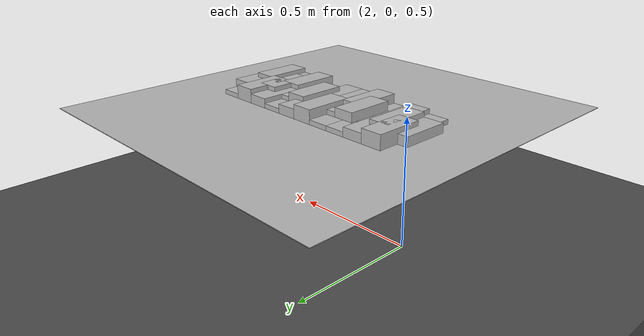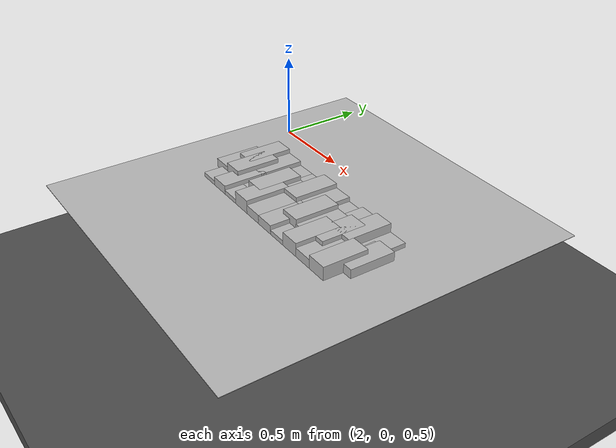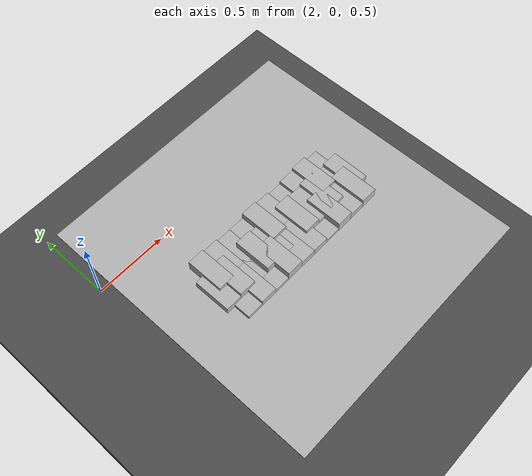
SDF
<sdf version="1.6">
 <world name="default">
  <model name="ground_plane">
   <static>1</static>
   <link name="link">
    <collision name="collision">
     <geometry><plane><normal>0 0 1</normal><size>100 100</size></plane></geometry>
     <surface><friction><ode><mu>100</mu><mu2>50</mu2></ode></friction></surface>
    </collision>
    <visual name="visual">
     <cast_shadows>0</cast_shadows>
     <geometry><plane><normal>0 0 1</normal><size>100 100</size></plane></geometry>
     <material>
      <script><uri>file://media/materials/scripts/gazebo.material</uri><name>Gazebo/Grey</name></script>
     </material>
    </visual>
   </link>
  </model>
  <model name="frc2016_roughterrain_0">
   <link name="link_clone_13">
    <pose>3.10114 -0.621156 -0.073164 0 -0 0</pose>
    <inertial>
     <inertia><ixx>nan</ixx><ixy>0</ixy><ixz>0</ixz><iyy>nan</iyy><iyz>0</iyz><izz>nan</izz></inertia>
     <mass>0</mass>
    </inertial>
    <visual name="row3_block9_md">
     <pose>-0.40005 -0.1143 0.10968 0 -0 0</pose>
     <geometry><box><size>0.115452 0.257474 0.0508</size></box></geometry>
     <material><shader type="pixel"/></material>
    </visual>
    <visual name="row1_block4_sm">
     <pose>0.17145 0.1143 0.09698 0 -0 0</pose>
     <geometry><box><size>0.115452 0.257474 0.0254</size></box></geometry>
     <material><shader type="pixel"/></material>
    </visual>
    <visual name="platform">
     <pose>0 0 0.08269 0 -0 0</pose>
     <geometry><box><size>1.91826 2.01688 0.003175</size></box></geometry>
     <material><shader type="pixel"/></material>
    </visual>
    <visual name="row1_block1_sm">
     <pose>0.51435 0.1143 0.09698 0 -0 0</pose>
     <geometry><box><size>0.115452 0.257474 0.0254</size></box></geometry>
     <material><shader type="pixel"/></material>
    </visual>
    <visual name="row1_block3_md">
     <pose>0.28575 0.1143 0.10968 0 -0 0</pose>
     <geometry><box><size>0.115452 0.257474 0.0508</size></box></geometry>
     <material><shader type="pixel"/></material>
    </visual>
    <visual name="row1_block2_lg">
     <pose>0.40005 0.1143 0.12238 0 -0 0</pose>
     <geometry><box><size>0.115452 0.257474 0.0762</size></box></geometry>
     <material><shader type="pixel"/></material>
    </visual>
    <visual name="row1_block5_md">
     <pose>0.05715 0.1143 0.10968 0 -0 0</pose>
     <geometry><box><size>0.115452 0.257474 0.0508</size></box></geometry>
     <material><shader type="pixel"/></material>
    </visual>
    <visual name="row1_block6_lg">
     <pose>-0.05715 0.1143 0.12238 0 -0 0</pose>
     <geometry><box><size>0.115452 0.257474 0.0762</size></box></geometry>
     <material><shader type="pixel"/></material>
    </visual>
    <visual name="row1_block8_sm">
     <pose>-0.28575 0.1143 0.09698 0 -0 0</pose>
     <geometry><box><size>0.115452 0.257474 0.0254</size></box></geometry>
     <material><shader type="pixel"/></material>
    </visual>
    <visual name="row1_block7_sm">
     <pose>-0.17145 0.1143 0.09698 0 -0 0</pose>
     <geometry><box><size>0.115452 0.257474 0.0254</size></box></geometry>
     <material><shader type="pixel"/></material>
    </visual>
    <visual name="row1_block9_md">
     <pose>-0.40005 0.1143 0.10968 0 -0 0</pose>
     <geometry><box><size>0.115452 0.257474 0.0508</size></box></geometry>
     <material><shader type="pixel"/></material>
    </visual>
    <visual name="row1_block10_lg">
     <pose>-0.51435 0.1143 0.12238 0 -0 0</pose>
     <geometry><box><size>0.115452 0.257474 0.0762</size></box></geometry>
     <material><shader type="pixel"/></material>
    </visual>
    <visual name="row2_block1_md">
     <pose>0.5715 0 0.10968 0 -0 0</pose>
     <geometry><box><size>0.115452 0.257474 0.0508</size></box></geometry>
     <material><shader type="pixel"/></material>
    </visual>
    <visual name="row2_block2_sm">
     <pose>0.4572 0 0.09698 0 -0 0</pose>
     <geometry><box><size>0.115452 0.257474 0.0254</size></box></geometry>
     <material><shader type="pixel"/></material>
    </visual>
    <visual name="row2_block3_lg">
     <pose>0.3429 0 0.12238 0 -0 0</pose>
     <geometry><box><size>0.115452 0.257474 0.0762</size></box></geometry>
     <material><shader type="pixel"/></material>
    </visual>
    <visual name="row2_block4_md">
     <pose>0.2286 0 0.10968 0 -0 0</pose>
     <geometry><box><size>0.115452 0.257474 0.0508</size></box></geometry>
     <material><shader type="pixel"/></material>
    </visual>
    <visual name="row2_block5_lg">
     <pose>0.1143 0 0.12238 0 -0 0</pose>
     <geometry><box><size>0.115452 0.257474 0.0762</size></box></geometry>
     <material><shader type="pixel"/></material>
    </visual>
    <visual name="row2_block6_sm">
     <pose>0 0 0.09698 0 -0 0</pose>
     <geometry><box><size>0.115452 0.257474 0.0254</size></box></geometry>
     <material><shader type="pixel"/></material>
    </visual>
    <visual name="row2_block7_md">
     <pose>-0.1143 0 0.10968 0 -0 0</pose>
     <geometry><box><size>0.115452 0.257474 0.0508</size></box></geometry>
     <material><shader type="pixel"/></material>
    </visual>
    <visual name="row2_block8_lg">
     <pose>-0.2286 0 0.12238 0 -0 0</pose>
     <geometry><box><size>0.115452 0.257474 0.0762</size></box></geometry>
     <material><shader type="pixel"/></material>
    </visual>
    <visual name="row2_block9_sm">
     <pose>-0.3429 0 0.09698 0 -0 0</pose>
     <geometry><box><size>0.115452 0.257474 0.0254</size></box></geometry>
     <material><shader type="pixel"/></material>
    </visual>
    <visual name="row2_block10_lg">
     <pose>-0.4572 0 0.12238 0 -0 0</pose>
     <geometry><box><size>0.115452 0.257474 0.0762</size></box></geometry>
     <material><shader type="pixel"/></material>
    </visual>
    <visual name="row2_block11_md">
     <pose>-0.5715 0 0.10968 0 -0 0</pose>
     <geometry><box><size>0.115452 0.257474 0.0508</size></box></geometry>
     <material><shader type="pixel"/></material>
    </visual>
    <visual name="row3_block2_md">
     <pose>0.40005 -0.1143 0.10968 0 -0 0</pose>
     <geometry><box><size>0.115452 0.257474 0.0508</size></box></geometry>
     <material><shader type="pixel"/></material>
    </visual>
    <visual name="row3_block1_lg">
     <pose>0.51435 -0.1143 0.12238 0 -0 0</pose>
     <geometry><box><size>0.115452 0.257474 0.0762</size></box></geometry>
     <material><shader type="pixel"/></material>
    </visual>
    <visual name="row3_block3_lg">
     <pose>0.28575 -0.1143 0.12238 0 -0 0</pose>
     <geometry><box><size>0.115452 0.257474 0.0762</size></box></geometry>
     <material><shader type="pixel"/></material>
    </visual>
    <visual name="row3_block4_sm">
     <pose>0.17145 -0.1143 0.09698 0 -0 0</pose>
     <geometry><box><size>0.115452 0.257474 0.0254</size></box></geometry>
     <material><shader type="pixel"/></material>
    </visual>
    <visual name="row3_block5_md">
     <pose>0.05715 -0.1143 0.10968 0 -0 0</pose>
     <geometry><box><size>0.115452 0.257474 0.0508</size></box></geometry>
     <material><shader type="pixel"/></material>
    </visual>
    <visual name="row3_block6_md">
     <pose>-0.05715 -0.1143 0.10968 0 -0 0</pose>
     <geometry><box><size>0.115452 0.257474 0.0508</size></box></geometry>
     <material><shader type="pixel"/></material>
    </visual>
    <visual name="row3_block8_sm">
     <pose>-0.28575 -0.1143 0.09698 0 -0 0</pose>
     <geometry><box><size>0.115452 0.257474 0.0254</size></box></geometry>
     <material><shader type="pixel"/></material>
    </visual>
    <visual name="row3_block7_lg">
     <pose>-0.17145 -0.1143 0.12238 0 -0 0</pose>
     <geometry><box><size>0.115452 0.257474 0.0762</size></box></geometry>
     <material><shader type="pixel"/></material>
    </visual>
    <visual name="row3_block10_sm">
     <pose>-0.51435 -0.1143 0.09698 0 -0 0</pose>
     <geometry><box><size>0.115452 0.257474 0.0254</size></box></geometry>
     <material><shader type="pixel"/></material>
    </visual>
    <collision name="row2_block5_lg_0">
     <pose>0.1143 0 0.12238 0 -0 0</pose>
     <geometry><box><size>0.115452 0.257474 0.0762</size></box></geometry>
     <surface>
      <friction>
       <ode><mu>1</mu><mu2>1</mu2><fdir1>0 0 0</fdir1><slip1>0</slip1><slip2>0</slip2></ode>
       <torsional>
        <coefficient>1</coefficient>
        <patch_radius>0</patch_radius>
        <surface_radius>0</surface_radius>
        <use_patch_radius>1</use_patch_radius>
        <ode><slip>0</slip></ode>
       </torsional>
      </friction>
      <bounce><restitution_coefficient>0</restitution_coefficient><threshold>1e+06</threshold></bounce>
      <contact>
       <collide_without_contact>0</collide_without_contact>
       <collide_without_contact_bitmask>1</collide_without_contact_bitmask>
       <collide_bitmask>1</collide_bitmask>
       <ode>
        <soft_cfm>0</soft_cfm>
        <soft_erp>0.2</soft_erp>
        <kp>1e+13</kp>
        <kd>1</kd>
        <max_vel>0.01</max_vel>
        <min_depth>0</min_depth>
       </ode>
       <bullet>
        <split_impulse>1</split_impulse>
        <split_impulse_penetration_threshold>-0.01</split_impulse_penetration_threshold>
        <soft_cfm>0</soft_cfm>
        <soft_erp>0.2</soft_erp>
        <kp>1e+13</kp>
        <kd>1</kd>
       </bullet>
      </contact>
     </surface>
    </collision>
    <collision name="platform_0">
     <pose>0 0 0.08269 0 -0 0</pose>
     <geometry><box><size>1.91826 2.01688 0.003175</size></box></geometry>
     <surface>
      <friction>
       <ode><mu>1</mu><mu2>1</mu2><fdir1>0 0 0</fdir1><slip1>0</slip1><slip2>0</slip2></ode>
       <torsional>
        <coefficient>1</coefficient>
        <patch_radius>0</patch_radius>
        <surface_radius>0</surface_radius>
        <use_patch_radius>1</use_patch_radius>
        <ode><slip>0</slip></ode>
       </torsional>
      </friction>
      <bounce><restitution_coefficient>0</restitution_coefficient><threshold>1e+06</threshold></bounce>
      <contact>
       <collide_without_contact>0</collide_without_contact>
       <collide_without_contact_bitmask>1</collide_without_contact_bitmask>
       <collide_bitmask>1</collide_bitmask>
       <ode>
        <soft_cfm>0</soft_cfm>
        <soft_erp>0.2</soft_erp>
        <kp>1e+13</kp>
        <kd>1</kd>
        <max_vel>0.01</max_vel>
        <min_depth>0</min_depth>
       </ode>
       <bullet>
        <split_impulse>1</split_impulse>
        <split_impulse_penetration_threshold>-0.01</split_impulse_penetration_threshold>
        <soft_cfm>0</soft_cfm>
        <soft_erp>0.2</soft_erp>
        <kp>1e+13</kp>
        <kd>1</kd>
       </bullet>
      </contact>
     </surface>
    </collision>
    <collision name="row1_block1_sm_0">
     <pose>0.51435 0.1143 0.09698 0 -0 0</pose>
     <geometry><box><size>0.115452 0.257474 0.0254</size></box></geometry>
     <surface>
      <friction>
       <ode><mu>1</mu><mu2>1</mu2><fdir1>0 0 0</fdir1><slip1>0</slip1><slip2>0</slip2></ode>
       <torsional>
        <coefficient>1</coefficient>
        <patch_radius>0</patch_radius>
        <surface_radius>0</surface_radius>
        <use_patch_radius>1</use_patch_radius>
        <ode><slip>0</slip></ode>
       </torsional>
      </friction>
      <bounce><restitution_coefficient>0</restitution_coefficient><threshold>1e+06</threshold></bounce>
      <contact>
       <collide_without_contact>0</collide_without_contact>
       <collide_without_contact_bitmask>1</collide_without_contact_bitmask>
       <collide_bitmask>1</collide_bitmask>
       <ode>
        <soft_cfm>0</soft_cfm>
        <soft_erp>0.2</soft_erp>
        <kp>1e+13</kp>
        <kd>1</kd>
        <max_vel>0.01</max_vel>
        <min_depth>0</min_depth>
       </ode>
       <bullet>
        <split_impulse>1</split_impulse>
        <split_impulse_penetration_threshold>-0.01</split_impulse_penetration_threshold>
        <soft_cfm>0</soft_cfm>
        <soft_erp>0.2</soft_erp>
        <kp>1e+13</kp>
        <kd>1</kd>
       </bullet>
      </contact>
     </surface>
    </collision>
    <collision name="row1_block3_md_0">
     <pose>0.28575 0.1143 0.10968 0 -0 0</pose>
     <geometry><box><size>0.115452 0.257474 0.0508</size></box></geometry>
     <surface>
      <friction>
       <ode><mu>1</mu><mu2>1</mu2><fdir1>0 0 0</fdir1><slip1>0</slip1><slip2>0</slip2></ode>
       <torsional>
        <coefficient>1</coefficient>
        <patch_radius>0</patch_radius>
        <surface_radius>0</surface_radius>
        <use_patch_radius>1</use_patch_radius>
        <ode><slip>0</slip></ode>
       </torsional>
      </friction>
      <bounce><restitution_coefficient>0</restitution_coefficient><threshold>1e+06</threshold></bounce>
      <contact>
       <collide_without_contact>0</collide_without_contact>
       <collide_without_contact_bitmask>1</collide_without_contact_bitmask>
       <collide_bitmask>1</collide_bitmask>
       <ode>
        <soft_cfm>0</soft_cfm>
        <soft_erp>0.2</soft_erp>
        <kp>1e+13</kp>
        <kd>1</kd>
        <max_vel>0.01</max_vel>
        <min_depth>0</min_depth>
       </ode>
       <bullet>
        <split_impulse>1</split_impulse>
        <split_impulse_penetration_threshold>-0.01</split_impulse_penetration_threshold>
        <soft_cfm>0</soft_cfm>
        <soft_erp>0.2</soft_erp>
        <kp>1e+13</kp>
        <kd>1</kd>
       </bullet>
      </contact>
     </surface>
    </collision>
    <collision name="row1_block5_md_0">
     <pose>0.05715 0.1143 0.10968 0 -0 0</pose>
     <geometry><box><size>0.115452 0.257474 0.0508</size></box></geometry>
     <surface>
      <friction>
       <ode><mu>1</mu><mu2>1</mu2><fdir1>0 0 0</fdir1><slip1>0</slip1><slip2>0</slip2></ode>
       <torsional>
        <coefficient>1</coefficient>
        <patch_radius>0</patch_radius>
        <surface_radius>0</surface_radius>
        <use_patch_radius>1</use_patch_radius>
        <ode><slip>0</slip></ode>
       </torsional>
      </friction>
      <bounce><restitution_coefficient>0</restitution_coefficient><threshold>1e+06</threshold></bounce>
      <contact>
       <collide_without_contact>0</collide_without_contact>
       <collide_without_contact_bitmask>1</collide_without_contact_bitmask>
       <collide_bitmask>1</collide_bitmask>
       <ode>
        <soft_cfm>0</soft_cfm>
        <soft_erp>0.2</soft_erp>
        <kp>1e+13</kp>
        <kd>1</kd>
        <max_vel>0.01</max_vel>
        <min_depth>0</min_depth>
       </ode>
       <bullet>
        <split_impulse>1</split_impulse>
        <split_impulse_penetration_threshold>-0.01</split_impulse_penetration_threshold>
        <soft_cfm>0</soft_cfm>
        <soft_erp>0.2</soft_erp>
        <kp>1e+13</kp>
        <kd>1</kd>
       </bullet>
      </contact>
     </surface>
    </collision>
    <collision name="row1_block2_lg_0">
     <pose>0.40005 0.1143 0.12238 0 -0 0</pose>
     <geometry><box><size>0.115452 0.257474 0.0762</size></box></geometry>
     <surface>
      <friction>
       <ode><mu>1</mu><mu2>1</mu2><fdir1>0 0 0</fdir1><slip1>0</slip1><slip2>0</slip2></ode>
       <torsional>
        <coefficient>1</coefficient>
        <patch_radius>0</patch_radius>
        <surface_radius>0</surface_radius>
        <use_patch_radius>1</use_patch_radius>
        <ode><slip>0</slip></ode>
       </torsional>
      </friction>
      <bounce><restitution_coefficient>0</restitution_coefficient><threshold>1e+06</threshold></bounce>
      <contact>
       <collide_without_contact>0</collide_without_contact>
       <collide_without_contact_bitmask>1</collide_without_contact_bitmask>
       <collide_bitmask>1</collide_bitmask>
       <ode>
        <soft_cfm>0</soft_cfm>
        <soft_erp>0.2</soft_erp>
        <kp>1e+13</kp>
        <kd>1</kd>
        <max_vel>0.01</max_vel>
        <min_depth>0</min_depth>
       </ode>
       <bullet>
        <split_impulse>1</split_impulse>
        <split_impulse_penetration_threshold>-0.01</split_impulse_penetration_threshold>
        <soft_cfm>0</soft_cfm>
        <soft_erp>0.2</soft_erp>
        <kp>1e+13</kp>
        <kd>1</kd>
       </bullet>
      </contact>
     </surface>
    </collision>
    <collision name="row1_block4_sm_0">
     <pose>0.17145 0.1143 0.09698 0 -0 0</pose>
     <geometry><box><size>0.115452 0.257474 0.0254</size></box></geometry>
     <surface>
      <friction>
       <ode><mu>1</mu><mu2>1</mu2><fdir1>0 0 0</fdir1><slip1>0</slip1><slip2>0</slip2></ode>
       <torsional>
        <coefficient>1</coefficient>
        <patch_radius>0</patch_radius>
        <surface_radius>0</surface_radius>
        <use_patch_radius>1</use_patch_radius>
        <ode><slip>0</slip></ode>
       </torsional>
      </friction>
      <bounce><restitution_coefficient>0</restitution_coefficient><threshold>1e+06</threshold></bounce>
      <contact>
       <collide_without_contact>0</collide_without_contact>
       <collide_without_contact_bitmask>1</collide_without_contact_bitmask>
       <collide_bitmask>1</collide_bitmask>
       <ode>
        <soft_cfm>0</soft_cfm>
        <soft_erp>0.2</soft_erp>
        <kp>1e+13</kp>
        <kd>1</kd>
        <max_vel>0.01</max_vel>
        <min_depth>0</min_depth>
       </ode>
       <bullet>
        <split_impulse>1</split_impulse>
        <split_impulse_penetration_threshold>-0.01</split_impulse_penetration_threshold>
        <soft_cfm>0</soft_cfm>
        <soft_erp>0.2</soft_erp>
        <kp>1e+13</kp>
        <kd>1</kd>
       </bullet>
      </contact>
     </surface>
    </collision>
    <collision name="row1_block6_lg_0">
     <pose>-0.05715 0.1143 0.12238 0 -0 0</pose>
     <geometry><box><size>0.115452 0.257474 0.0762</size></box></geometry>
     <surface>
      <friction>
       <ode><mu>1</mu><mu2>1</mu2><fdir1>0 0 0</fdir1><slip1>0</slip1><slip2>0</slip2></ode>
       <torsional>
        <coefficient>1</coefficient>
        <patch_radius>0</patch_radius>
        <surface_radius>0</surface_radius>
        <use_patch_radius>1</use_patch_radius>
        <ode><slip>0</slip></ode>
       </torsional>
      </friction>
      <bounce><restitution_coefficient>0</restitution_coefficient><threshold>1e+06</threshold></bounce>
      <contact>
       <collide_without_contact>0</collide_without_contact>
       <collide_without_contact_bitmask>1</collide_without_contact_bitmask>
       <collide_bitmask>1</collide_bitmask>
       <ode>
        <soft_cfm>0</soft_cfm>
        <soft_erp>0.2</soft_erp>
        <kp>1e+13</kp>
        <kd>1</kd>
        <max_vel>0.01</max_vel>
        <min_depth>0</min_depth>
       </ode>
       <bullet>
        <split_impulse>1</split_impulse>
        <split_impulse_penetration_threshold>-0.01</split_impulse_penetration_threshold>
        <soft_cfm>0</soft_cfm>
        <soft_erp>0.2</soft_erp>
        <kp>1e+13</kp>
        <kd>1</kd>
       </bullet>
      </contact>
     </surface>
    </collision>
    <collision name="row1_block10_lg_0">
     <pose>-0.51435 0.1143 0.12238 0 -0 0</pose>
     <geometry><box><size>0.115452 0.257474 0.0762</size></box></geometry>
     <surface>
      <friction>
       <ode><mu>1</mu><mu2>1</mu2><fdir1>0 0 0</fdir1><slip1>0</slip1><slip2>0</slip2></ode>
       <torsional>
        <coefficient>1</coefficient>
        <patch_radius>0</patch_radius>
        <surface_radius>0</surface_radius>
        <use_patch_radius>1</use_patch_radius>
        <ode><slip>0</slip></ode>
       </torsional>
      </friction>
      <bounce><restitution_coefficient>0</restitution_coefficient><threshold>1e+06</threshold></bounce>
      <contact>
       <collide_without_contact>0</collide_without_contact>
       <collide_without_contact_bitmask>1</collide_without_contact_bitmask>
       <collide_bitmask>1</collide_bitmask>
       <ode>
        <soft_cfm>0</soft_cfm>
        <soft_erp>0.2</soft_erp>
        <kp>1e+13</kp>
        <kd>1</kd>
        <max_vel>0.01</max_vel>
        <min_depth>0</min_depth>
       </ode>
       <bullet>
        <split_impulse>1</split_impulse>
        <split_impulse_penetration_threshold>-0.01</split_impulse_penetration_threshold>
        <soft_cfm>0</soft_cfm>
        <soft_erp>0.2</soft_erp>
        <kp>1e+13</kp>
        <kd>1</kd>
       </bullet>
      </contact>
     </surface>
    </collision>
    <collision name="row1_block7_sm_0">
     <pose>-0.17145 0.1143 0.09698 0 -0 0</pose>
     <geometry><box><size>0.115452 0.257474 0.0254</size></box></geometry>
     <surface>
      <friction>
       <ode><mu>1</mu><mu2>1</mu2><fdir1>0 0 0</fdir1><slip1>0</slip1><slip2>0</slip2></ode>
       <torsional>
        <coefficient>1</coefficient>
        <patch_radius>0</patch_radius>
        <surface_radius>0</surface_radius>
        <use_patch_radius>1</use_patch_radius>
        <ode><slip>0</slip></ode>
       </torsional>
      </friction>
      <bounce><restitution_coefficient>0</restitution_coefficient><threshold>1e+06</threshold></bounce>
      <contact>
       <collide_without_contact>0</collide_without_contact>
       <collide_without_contact_bitmask>1</collide_without_contact_bitmask>
       <collide_bitmask>1</collide_bitmask>
       <ode>
        <soft_cfm>0</soft_cfm>
        <soft_erp>0.2</soft_erp>
        <kp>1e+13</kp>
        <kd>1</kd>
        <max_vel>0.01</max_vel>
        <min_depth>0</min_depth>
       </ode>
       <bullet>
        <split_impulse>1</split_impulse>
        <split_impulse_penetration_threshold>-0.01</split_impulse_penetration_threshold>
        <soft_cfm>0</soft_cfm>
        <soft_erp>0.2</soft_erp>
        <kp>1e+13</kp>
        <kd>1</kd>
       </bullet>
      </contact>
     </surface>
    </collision>
    <collision name="row1_block8_sm_0">
     <pose>-0.28575 0.1143 0.09698 0 -0 0</pose>
     <geometry><box><size>0.115452 0.257474 0.0254</size></box></geometry>
     <surface>
      <friction>
       <ode><mu>1</mu><mu2>1</mu2><fdir1>0 0 0</fdir1><slip1>0</slip1><slip2>0</slip2></ode>
       <torsional>
        <coefficient>1</coefficient>
        <patch_radius>0</patch_radius>
        <surface_radius>0</surface_radius>
        <use_patch_radius>1</use_patch_radius>
        <ode><slip>0</slip></ode>
       </torsional>
      </friction>
      <bounce><restitution_coefficient>0</restitution_coefficient><threshold>1e+06</threshold></bounce>
      <contact>
       <collide_without_contact>0</collide_without_contact>
       <collide_without_contact_bitmask>1</collide_without_contact_bitmask>
       <collide_bitmask>1</collide_bitmask>
       <ode>
        <soft_cfm>0</soft_cfm>
        <soft_erp>0.2</soft_erp>
        <kp>1e+13</kp>
        <kd>1</kd>
        <max_vel>0.01</max_vel>
        <min_depth>0</min_depth>
       </ode>
       <bullet>
        <split_impulse>1</split_impulse>
        <split_impulse_penetration_threshold>-0.01</split_impulse_penetration_threshold>
        <soft_cfm>0</soft_cfm>
        <soft_erp>0.2</soft_erp>
        <kp>1e+13</kp>
        <kd>1</kd>
       </bullet>
      </contact>
     </surface>
    </collision>
    <collision name="row1_block9_md_0">
     <pose>-0.40005 0.1143 0.10968 0 -0 0</pose>
     <geometry><box><size>0.115452 0.257474 0.0508</size></box></geometry>
     <surface>
      <friction>
       <ode><mu>1</mu><mu2>1</mu2><fdir1>0 0 0</fdir1><slip1>0</slip1><slip2>0</slip2></ode>
       <torsional>
        <coefficient>1</coefficient>
        <patch_radius>0</patch_radius>
        <surface_radius>0</surface_radius>
        <use_patch_radius>1</use_patch_radius>
        <ode><slip>0</slip></ode>
       </torsional>
      </friction>
      <bounce><restitution_coefficient>0</restitution_coefficient><threshold>1e+06</threshold></bounce>
      <contact>
       <collide_without_contact>0</collide_without_contact>
       <collide_without_contact_bitmask>1</collide_without_contact_bitmask>
       <collide_bitmask>1</collide_bitmask>
       <ode>
        <soft_cfm>0</soft_cfm>
        <soft_erp>0.2</soft_erp>
        <kp>1e+13</kp>
        <kd>1</kd>
        <max_vel>0.01</max_vel>
        <min_depth>0</min_depth>
       </ode>
       <bullet>
        <split_impulse>1</split_impulse>
        <split_impulse_penetration_threshold>-0.01</split_impulse_penetration_threshold>
        <soft_cfm>0</soft_cfm>
        <soft_erp>0.2</soft_erp>
        <kp>1e+13</kp>
        <kd>1</kd>
       </bullet>
      </contact>
     </surface>
    </collision>
    <collision name="row2_block1_md_0">
     <pose>0.5715 0 0.10968 0 -0 0</pose>
     <geometry><box><size>0.115452 0.257474 0.0508</size></box></geometry>
     <surface>
      <friction>
       <ode><mu>1</mu><mu2>1</mu2><fdir1>0 0 0</fdir1><slip1>0</slip1><slip2>0</slip2></ode>
       <torsional>
        <coefficient>1</coefficient>
        <patch_radius>0</patch_radius>
        <surface_radius>0</surface_radius>
        <use_patch_radius>1</use_patch_radius>
        <ode><slip>0</slip></ode>
       </torsional>
      </friction>
      <bounce><restitution_coefficient>0</restitution_coefficient><threshold>1e+06</threshold></bounce>
      <contact>
       <collide_without_contact>0</collide_without_contact>
       <collide_without_contact_bitmask>1</collide_without_contact_bitmask>
       <collide_bitmask>1</collide_bitmask>
       <ode>
        <soft_cfm>0</soft_cfm>
        <soft_erp>0.2</soft_erp>
        <kp>1e+13</kp>
        <kd>1</kd>
        <max_vel>0.01</max_vel>
        <min_depth>0</min_depth>
       </ode>
       <bullet>
        <split_impulse>1</split_impulse>
        <split_impulse_penetration_threshold>-0.01</split_impulse_penetration_threshold>
        <soft_cfm>0</soft_cfm>
        <soft_erp>0.2</soft_erp>
        <kp>1e+13</kp>
        <kd>1</kd>
       </bullet>
      </contact>
     </surface>
    </collision>
    <collision name="row2_block4_md_0">
     <pose>0.2286 0 0.10968 0 -0 0</pose>
     <geometry><box><size>0.115452 0.257474 0.0508</size></box></geometry>
     <surface>
      <friction>
       <ode><mu>1</mu><mu2>1</mu2><fdir1>0 0 0</fdir1><slip1>0</slip1><slip2>0</slip2></ode>
       <torsional>
        <coefficient>1</coefficient>
        <patch_radius>0</patch_radius>
        <surface_radius>0</surface_radius>
        <use_patch_radius>1</use_patch_radius>
        <ode><slip>0</slip></ode>
       </torsional>
      </friction>
      <bounce><restitution_coefficient>0</restitution_coefficient><threshold>1e+06</threshold></bounce>
      <contact>
       <collide_without_contact>0</collide_without_contact>
       <collide_without_contact_bitmask>1</collide_without_contact_bitmask>
       <collide_bitmask>1</collide_bitmask>
       <ode>
        <soft_cfm>0</soft_cfm>
        <soft_erp>0.2</soft_erp>
        <kp>1e+13</kp>
        <kd>1</kd>
        <max_vel>0.01</max_vel>
        <min_depth>0</min_depth>
       </ode>
       <bullet>
        <split_impulse>1</split_impulse>
        <split_impulse_penetration_threshold>-0.01</split_impulse_penetration_threshold>
        <soft_cfm>0</soft_cfm>
        <soft_erp>0.2</soft_erp>
        <kp>1e+13</kp>
        <kd>1</kd>
       </bullet>
      </contact>
     </surface>
    </collision>
    <collision name="row2_block2_sm_0">
     <pose>0.4572 0 0.09698 0 -0 0</pose>
     <geometry><box><size>0.115452 0.257474 0.0254</size></box></geometry>
     <surface>
      <friction>
       <ode><mu>1</mu><mu2>1</mu2><fdir1>0 0 0</fdir1><slip1>0</slip1><slip2>0</slip2></ode>
       <torsional>
        <coefficient>1</coefficient>
        <patch_radius>0</patch_radius>
        <surface_radius>0</surface_radius>
        <use_patch_radius>1</use_patch_radius>
        <ode><slip>0</slip></ode>
       </torsional>
      </friction>
      <bounce><restitution_coefficient>0</restitution_coefficient><threshold>1e+06</threshold></bounce>
      <contact>
       <collide_without_contact>0</collide_without_contact>
       <collide_without_contact_bitmask>1</collide_without_contact_bitmask>
       <collide_bitmask>1</collide_bitmask>
       <ode>
        <soft_cfm>0</soft_cfm>
        <soft_erp>0.2</soft_erp>
        <kp>1e+13</kp>
        <kd>1</kd>
        <max_vel>0.01</max_vel>
        <min_depth>0</min_depth>
       </ode>
       <bullet>
        <split_impulse>1</split_impulse>
        <split_impulse_penetration_threshold>-0.01</split_impulse_penetration_threshold>
        <soft_cfm>0</soft_cfm>
        <soft_erp>0.2</soft_erp>
        <kp>1e+13</kp>
        <kd>1</kd>
       </bullet>
      </contact>
     </surface>
    </collision>
    <collision name="row2_block10_lg_0">
     <pose>-0.4572 0 0.12238 0 -0 0</pose>
     <geometry><box><size>0.115452 0.257474 0.0762</size></box></geometry>
     <surface>
      <friction>
       <ode><mu>1</mu><mu2>1</mu2><fdir1>0 0 0</fdir1><slip1>0</slip1><slip2>0</slip2></ode>
       <torsional>
        <coefficient>1</coefficient>
        <patch_radius>0</patch_radius>
        <surface_radius>0</surface_radius>
        <use_patch_radius>1</use_patch_radius>
        <ode><slip>0</slip></ode>
       </torsional>
      </friction>
      <bounce><restitution_coefficient>0</restitution_coefficient><threshold>1e+06</threshold></bounce>
      <contact>
       <collide_without_contact>0</collide_without_contact>
       <collide_without_contact_bitmask>1</collide_without_contact_bitmask>
       <collide_bitmask>1</collide_bitmask>
       <ode>
        <soft_cfm>0</soft_cfm>
        <soft_erp>0.2</soft_erp>
        <kp>1e+13</kp>
        <kd>1</kd>
        <max_vel>0.01</max_vel>
        <min_depth>0</min_depth>
       </ode>
       <bullet>
        <split_impulse>1</split_impulse>
        <split_impulse_penetration_threshold>-0.01</split_impulse_penetration_threshold>
        <soft_cfm>0</soft_cfm>
        <soft_erp>0.2</soft_erp>
        <kp>1e+13</kp>
        <kd>1</kd>
       </bullet>
      </contact>
     </surface>
    </collision>
    <collision name="row2_block3_lg_0">
     <pose>0.3429 0 0.12238 0 -0 0</pose>
     <geometry><box><size>0.115452 0.257474 0.0762</size></box></geometry>
     <surface>
      <friction>
       <ode><mu>1</mu><mu2>1</mu2><fdir1>0 0 0</fdir1><slip1>0</slip1><slip2>0</slip2></ode>
       <torsional>
        <coefficient>1</coefficient>
        <patch_radius>0</patch_radius>
        <surface_radius>0</surface_radius>
        <use_patch_radius>1</use_patch_radius>
        <ode><slip>0</slip></ode>
       </torsional>
      </friction>
      <bounce><restitution_coefficient>0</restitution_coefficient><threshold>1e+06</threshold></bounce>
      <contact>
       <collide_without_contact>0</collide_without_contact>
       <collide_without_contact_bitmask>1</collide_without_contact_bitmask>
       <collide_bitmask>1</collide_bitmask>
       <ode>
        <soft_cfm>0</soft_cfm>
        <soft_erp>0.2</soft_erp>
        <kp>1e+13</kp>
        <kd>1</kd>
        <max_vel>0.01</max_vel>
        <min_depth>0</min_depth>
       </ode>
       <bullet>
        <split_impulse>1</split_impulse>
        <split_impulse_penetration_threshold>-0.01</split_impulse_penetration_threshold>
        <soft_cfm>0</soft_cfm>
        <soft_erp>0.2</soft_erp>
        <kp>1e+13</kp>
        <kd>1</kd>
       </bullet>
      </contact>
     </surface>
    </collision>
    <collision name="row2_block6_sm_0">
     <pose>0 0 0.09698 0 -0 0</pose>
     <geometry><box><size>0.115452 0.257474 0.0254</size></box></geometry>
     <surface>
      <friction>
       <ode><mu>1</mu><mu2>1</mu2><fdir1>0 0 0</fdir1><slip1>0</slip1><slip2>0</slip2></ode>
       <torsional>
        <coefficient>1</coefficient>
        <patch_radius>0</patch_radius>
        <surface_radius>0</surface_radius>
        <use_patch_radius>1</use_patch_radius>
        <ode><slip>0</slip></ode>
       </torsional>
      </friction>
      <bounce><restitution_coefficient>0</restitution_coefficient><threshold>1e+06</threshold></bounce>
      <contact>
       <collide_without_contact>0</collide_without_contact>
       <collide_without_contact_bitmask>1</collide_without_contact_bitmask>
       <collide_bitmask>1</collide_bitmask>
       <ode>
        <soft_cfm>0</soft_cfm>
        <soft_erp>0.2</soft_erp>
        <kp>1e+13</kp>
        <kd>1</kd>
        <max_vel>0.01</max_vel>
        <min_depth>0</min_depth>
       </ode>
       <bullet>
        <split_impulse>1</split_impulse>
        <split_impulse_penetration_threshold>-0.01</split_impulse_penetration_threshold>
        <soft_cfm>0</soft_cfm>
        <soft_erp>0.2</soft_erp>
        <kp>1e+13</kp>
        <kd>1</kd>
       </bullet>
      </contact>
     </surface>
    </collision>
    <collision name="row2_block7_md_0">
     <pose>-0.1143 0 0.10968 0 -0 0</pose>
     <geometry><box><size>0.115452 0.257474 0.0508</size></box></geometry>
     <surface>
      <friction>
       <ode><mu>1</mu><mu2>1</mu2><fdir1>0 0 0</fdir1><slip1>0</slip1><slip2>0</slip2></ode>
       <torsional>
        <coefficient>1</coefficient>
        <patch_radius>0</patch_radius>
        <surface_radius>0</surface_radius>
        <use_patch_radius>1</use_patch_radius>
        <ode><slip>0</slip></ode>
       </torsional>
      </friction>
      <bounce><restitution_coefficient>0</restitution_coefficient><threshold>1e+06</threshold></bounce>
      <contact>
       <collide_without_contact>0</collide_without_contact>
       <collide_without_contact_bitmask>1</collide_without_contact_bitmask>
       <collide_bitmask>1</collide_bitmask>
       <ode>
        <soft_cfm>0</soft_cfm>
        <soft_erp>0.2</soft_erp>
        <kp>1e+13</kp>
        <kd>1</kd>
        <max_vel>0.01</max_vel>
        <min_depth>0</min_depth>
       </ode>
       <bullet>
        <split_impulse>1</split_impulse>
        <split_impulse_penetration_threshold>-0.01</split_impulse_penetration_threshold>
        <soft_cfm>0</soft_cfm>
        <soft_erp>0.2</soft_erp>
        <kp>1e+13</kp>
        <kd>1</kd>
       </bullet>
      </contact>
     </surface>
    </collision>
    <collision name="row3_block2_md_0">
     <pose>0.40005 -0.1143 0.10968 0 -0 0</pose>
     <geometry><box><size>0.115452 0.257474 0.0508</size></box></geometry>
     <surface>
      <friction>
       <ode><mu>1</mu><mu2>1</mu2><fdir1>0 0 0</fdir1><slip1>0</slip1><slip2>0</slip2></ode>
       <torsional>
        <coefficient>1</coefficient>
        <patch_radius>0</patch_radius>
        <surface_radius>0</surface_radius>
        <use_patch_radius>1</use_patch_radius>
        <ode><slip>0</slip></ode>
       </torsional>
      </friction>
      <bounce><restitution_coefficient>0</restitution_coefficient><threshold>1e+06</threshold></bounce>
      <contact>
       <collide_without_contact>0</collide_without_contact>
       <collide_without_contact_bitmask>1</collide_without_contact_bitmask>
       <collide_bitmask>1</collide_bitmask>
       <ode>
        <soft_cfm>0</soft_cfm>
        <soft_erp>0.2</soft_erp>
        <kp>1e+13</kp>
        <kd>1</kd>
        <max_vel>0.01</max_vel>
        <min_depth>0</min_depth>
       </ode>
       <bullet>
        <split_impulse>1</split_impulse>
        <split_impulse_penetration_threshold>-0.01</split_impulse_penetration_threshold>
        <soft_cfm>0</soft_cfm>
        <soft_erp>0.2</soft_erp>
        <kp>1e+13</kp>
        <kd>1</kd>
       </bullet>
      </contact>
     </surface>
    </collision>
    <collision name="row2_block8_lg_0">
     <pose>-0.2286 0 0.12238 0 -0 0</pose>
     <geometry><box><size>0.115452 0.257474 0.0762</size></box></geometry>
     <surface>
      <friction>
       <ode><mu>1</mu><mu2>1</mu2><fdir1>0 0 0</fdir1><slip1>0</slip1><slip2>0</slip2></ode>
       <torsional>
        <coefficient>1</coefficient>
        <patch_radius>0</patch_radius>
        <surface_radius>0</surface_radius>
        <use_patch_radius>1</use_patch_radius>
        <ode><slip>0</slip></ode>
       </torsional>
      </friction>
      <bounce><restitution_coefficient>0</restitution_coefficient><threshold>1e+06</threshold></bounce>
      <contact>
       <collide_without_contact>0</collide_without_contact>
       <collide_without_contact_bitmask>1</collide_without_contact_bitmask>
       <collide_bitmask>1</collide_bitmask>
       <ode>
        <soft_cfm>0</soft_cfm>
        <soft_erp>0.2</soft_erp>
        <kp>1e+13</kp>
        <kd>1</kd>
        <max_vel>0.01</max_vel>
        <min_depth>0</min_depth>
       </ode>
       <bullet>
        <split_impulse>1</split_impulse>
        <split_impulse_penetration_threshold>-0.01</split_impulse_penetration_threshold>
        <soft_cfm>0</soft_cfm>
        <soft_erp>0.2</soft_erp>
        <kp>1e+13</kp>
        <kd>1</kd>
       </bullet>
      </contact>
     </surface>
    </collision>
    <collision name="row2_block11_md_0">
     <pose>-0.5715 0 0.10968 0 -0 0</pose>
     <geometry><box><size>0.115452 0.257474 0.0508</size></box></geometry>
     <surface>
      <friction>
       <ode><mu>1</mu><mu2>1</mu2><fdir1>0 0 0</fdir1><slip1>0</slip1><slip2>0</slip2></ode>
       <torsional>
        <coefficient>1</coefficient>
        <patch_radius>0</patch_radius>
        <surface_radius>0</surface_radius>
        <use_patch_radius>1</use_patch_radius>
        <ode><slip>0</slip></ode>
       </torsional>
      </friction>
      <bounce><restitution_coefficient>0</restitution_coefficient><threshold>1e+06</threshold></bounce>
      <contact>
       <collide_without_contact>0</collide_without_contact>
       <collide_without_contact_bitmask>1</collide_without_contact_bitmask>
       <collide_bitmask>1</collide_bitmask>
       <ode>
        <soft_cfm>0</soft_cfm>
        <soft_erp>0.2</soft_erp>
        <kp>1e+13</kp>
        <kd>1</kd>
        <max_vel>0.01</max_vel>
        <min_depth>0</min_depth>
       </ode>
       <bullet>
        <split_impulse>1</split_impulse>
        <split_impulse_penetration_threshold>-0.01</split_impulse_penetration_threshold>
        <soft_cfm>0</soft_cfm>
        <soft_erp>0.2</soft_erp>
        <kp>1e+13</kp>
        <kd>1</kd>
       </bullet>
      </contact>
     </surface>
    </collision>
    <collision name="row2_block9_sm_0">
     <pose>-0.3429 0 0.09698 0 -0 0</pose>
     <geometry><box><size>0.115452 0.257474 0.0254</size></box></geometry>
     <surface>
      <friction>
       <ode><mu>1</mu><mu2>1</mu2><fdir1>0 0 0</fdir1><slip1>0</slip1><slip2>0</slip2></ode>
       <torsional>
        <coefficient>1</coefficient>
        <patch_radius>0</patch_radius>
        <surface_radius>0</surface_radius>
        <use_patch_radius>1</use_patch_radius>
        <ode><slip>0</slip></ode>
       </torsional>
      </friction>
      <bounce><restitution_coefficient>0</restitution_coefficient><threshold>1e+06</threshold></bounce>
      <contact>
       <collide_without_contact>0</collide_without_contact>
       <collide_without_contact_bitmask>1</collide_without_contact_bitmask>
       <collide_bitmask>1</collide_bitmask>
       <ode>
        <soft_cfm>0</soft_cfm>
        <soft_erp>0.2</soft_erp>
        <kp>1e+13</kp>
        <kd>1</kd>
        <max_vel>0.01</max_vel>
        <min_depth>0</min_depth>
       </ode>
       <bullet>
        <split_impulse>1</split_impulse>
        <split_impulse_penetration_threshold>-0.01</split_impulse_penetration_threshold>
        <soft_cfm>0</soft_cfm>
        <soft_erp>0.2</soft_erp>
        <kp>1e+13</kp>
        <kd>1</kd>
       </bullet>
      </contact>
     </surface>
    </collision>
    <collision name="row3_block3_lg_0">
     <pose>0.28575 -0.1143 0.12238 0 -0 0</pose>
     <geometry><box><size>0.115452 0.257474 0.0762</size></box></geometry>
     <surface>
      <friction>
       <ode><mu>1</mu><mu2>1</mu2><fdir1>0 0 0</fdir1><slip1>0</slip1><slip2>0</slip2></ode>
       <torsional>
        <coefficient>1</coefficient>
        <patch_radius>0</patch_radius>
        <surface_radius>0</surface_radius>
        <use_patch_radius>1</use_patch_radius>
        <ode><slip>0</slip></ode>
       </torsional>
      </friction>
      <bounce><restitution_coefficient>0</restitution_coefficient><threshold>1e+06</threshold></bounce>
      <contact>
       <collide_without_contact>0</collide_without_contact>
       <collide_without_contact_bitmask>1</collide_without_contact_bitmask>
       <collide_bitmask>1</collide_bitmask>
       <ode>
        <soft_cfm>0</soft_cfm>
        <soft_erp>0.2</soft_erp>
        <kp>1e+13</kp>
        <kd>1</kd>
        <max_vel>0.01</max_vel>
        <min_depth>0</min_depth>
       </ode>
       <bullet>
        <split_impulse>1</split_impulse>
        <split_impulse_penetration_threshold>-0.01</split_impulse_penetration_threshold>
        <soft_cfm>0</soft_cfm>
        <soft_erp>0.2</soft_erp>
        <kp>1e+13</kp>
        <kd>1</kd>
       </bullet>
      </contact>
     </surface>
    </collision>
    <collision name="row3_block1_lg_0">
     <pose>0.51435 -0.1143 0.12238 0 -0 0</pose>
     <geometry><box><size>0.115452 0.257474 0.0762</size></box></geometry>
     <surface>
      <friction>
       <ode><mu>1</mu><mu2>1</mu2><fdir1>0 0 0</fdir1><slip1>0</slip1><slip2>0</slip2></ode>
       <torsional>
        <coefficient>1</coefficient>
        <patch_radius>0</patch_radius>
        <surface_radius>0</surface_radius>
        <use_patch_radius>1</use_patch_radius>
        <ode><slip>0</slip></ode>
       </torsional>
      </friction>
      <bounce><restitution_coefficient>0</restitution_coefficient><threshold>1e+06</threshold></bounce>
      <contact>
       <collide_without_contact>0</collide_without_contact>
       <collide_without_contact_bitmask>1</collide_without_contact_bitmask>
       <collide_bitmask>1</collide_bitmask>
       <ode>
        <soft_cfm>0</soft_cfm>
        <soft_erp>0.2</soft_erp>
        <kp>1e+13</kp>
        <kd>1</kd>
        <max_vel>0.01</max_vel>
        <min_depth>0</min_depth>
       </ode>
       <bullet>
        <split_impulse>1</split_impulse>
        <split_impulse_penetration_threshold>-0.01</split_impulse_penetration_threshold>
        <soft_cfm>0</soft_cfm>
        <soft_erp>0.2</soft_erp>
        <kp>1e+13</kp>
        <kd>1</kd>
       </bullet>
      </contact>
     </surface>
    </collision>
    <collision name="row3_block4_sm_0">
     <pose>0.17145 -0.1143 0.09698 0 -0 0</pose>
     <geometry><box><size>0.115452 0.257474 0.0254</size></box></geometry>
     <surface>
      <friction>
       <ode><mu>1</mu><mu2>1</mu2><fdir1>0 0 0</fdir1><slip1>0</slip1><slip2>0</slip2></ode>
       <torsional>
        <coefficient>1</coefficient>
        <patch_radius>0</patch_radius>
        <surface_radius>0</surface_radius>
        <use_patch_radius>1</use_patch_radius>
        <ode><slip>0</slip></ode>
       </torsional>
      </friction>
      <bounce><restitution_coefficient>0</restitution_coefficient><threshold>1e+06</threshold></bounce>
      <contact>
       <collide_without_contact>0</collide_without_contact>
       <collide_without_contact_bitmask>1</collide_without_contact_bitmask>
       <collide_bitmask>1</collide_bitmask>
       <ode>
        <soft_cfm>0</soft_cfm>
        <soft_erp>0.2</soft_erp>
        <kp>1e+13</kp>
        <kd>1</kd>
        <max_vel>0.01</max_vel>
        <min_depth>0</min_depth>
       </ode>
       <bullet>
        <split_impulse>1</split_impulse>
        <split_impulse_penetration_threshold>-0.01</split_impulse_penetration_threshold>
        <soft_cfm>0</soft_cfm>
        <soft_erp>0.2</soft_erp>
        <kp>1e+13</kp>
        <kd>1</kd>
       </bullet>
      </contact>
     </surface>
    </collision>
    <collision name="row3_block5_md_0">
     <pose>0.05715 -0.1143 0.10968 0 -0 0</pose>
     <geometry><box><size>0.115452 0.257474 0.0508</size></box></geometry>
     <surface>
      <friction>
       <ode><mu>1</mu><mu2>1</mu2><fdir1>0 0 0</fdir1><slip1>0</slip1><slip2>0</slip2></ode>
       <torsional>
        <coefficient>1</coefficient>
        <patch_radius>0</patch_radius>
        <surface_radius>0</surface_radius>
        <use_patch_radius>1</use_patch_radius>
        <ode><slip>0</slip></ode>
       </torsional>
      </friction>
      <bounce><restitution_coefficient>0</restitution_coefficient><threshold>1e+06</threshold></bounce>
      <contact>
       <collide_without_contact>0</collide_without_contact>
       <collide_without_contact_bitmask>1</collide_without_contact_bitmask>
       <collide_bitmask>1</collide_bitmask>
       <ode>
        <soft_cfm>0</soft_cfm>
        <soft_erp>0.2</soft_erp>
        <kp>1e+13</kp>
        <kd>1</kd>
        <max_vel>0.01</max_vel>
        <min_depth>0</min_depth>
       </ode>
       <bullet>
        <split_impulse>1</split_impulse>
        <split_impulse_penetration_threshold>-0.01</split_impulse_penetration_threshold>
        <soft_cfm>0</soft_cfm>
        <soft_erp>0.2</soft_erp>
        <kp>1e+13</kp>
        <kd>1</kd>
       </bullet>
      </contact>
     </surface>
    </collision>
    <collision name="row3_block7_lg_0">
     <pose>-0.17145 -0.1143 0.12238 0 -0 0</pose>
     <geometry><box><size>0.115452 0.257474 0.0762</size></box></geometry>
     <surface>
      <friction>
       <ode><mu>1</mu><mu2>1</mu2><fdir1>0 0 0</fdir1><slip1>0</slip1><slip2>0</slip2></ode>
       <torsional>
        <coefficient>1</coefficient>
        <patch_radius>0</patch_radius>
        <surface_radius>0</surface_radius>
        <use_patch_radius>1</use_patch_radius>
        <ode><slip>0</slip></ode>
       </torsional>
      </friction>
      <bounce><restitution_coefficient>0</restitution_coefficient><threshold>1e+06</threshold></bounce>
      <contact>
       <collide_without_contact>0</collide_without_contact>
       <collide_without_contact_bitmask>1</collide_without_contact_bitmask>
       <collide_bitmask>1</collide_bitmask>
       <ode>
        <soft_cfm>0</soft_cfm>
        <soft_erp>0.2</soft_erp>
        <kp>1e+13</kp>
        <kd>1</kd>
        <max_vel>0.01</max_vel>
        <min_depth>0</min_depth>
       </ode>
       <bullet>
        <split_impulse>1</split_impulse>
        <split_impulse_penetration_threshold>-0.01</split_impulse_penetration_threshold>
        <soft_cfm>0</soft_cfm>
        <soft_erp>0.2</soft_erp>
        <kp>1e+13</kp>
        <kd>1</kd>
       </bullet>
      </contact>
     </surface>
    </collision>
    <collision name="row3_block8_sm_0">
     <pose>-0.28575 -0.1143 0.09698 0 -0 0</pose>
     <geometry><box><size>0.115452 0.257474 0.0254</size></box></geometry>
     <surface>
      <friction>
       <ode><mu>1</mu><mu2>1</mu2><fdir1>0 0 0</fdir1><slip1>0</slip1><slip2>0</slip2></ode>
       <torsional>
        <coefficient>1</coefficient>
        <patch_radius>0</patch_radius>
        <surface_radius>0</surface_radius>
        <use_patch_radius>1</use_patch_radius>
        <ode><slip>0</slip></ode>
       </torsional>
      </friction>
      <bounce><restitution_coefficient>0</restitution_coefficient><threshold>1e+06</threshold></bounce>
      <contact>
       <collide_without_contact>0</collide_without_contact>
       <collide_without_contact_bitmask>1</collide_without_contact_bitmask>
       <collide_bitmask>1</collide_bitmask>
       <ode>
        <soft_cfm>0</soft_cfm>
        <soft_erp>0.2</soft_erp>
        <kp>1e+13</kp>
        <kd>1</kd>
        <max_vel>0.01</max_vel>
        <min_depth>0</min_depth>
       </ode>
       <bullet>
        <split_impulse>1</split_impulse>
        <split_impulse_penetration_threshold>-0.01</split_impulse_penetration_threshold>
        <soft_cfm>0</soft_cfm>
        <soft_erp>0.2</soft_erp>
        <kp>1e+13</kp>
        <kd>1</kd>
       </bullet>
      </contact>
     </surface>
    </collision>
    <collision name="row3_block6_md_0">
     <pose>-0.05715 -0.1143 0.10968 0 -0 0</pose>
     <geometry><box><size>0.115452 0.257474 0.0508</size></box></geometry>
     <surface>
      <friction>
       <ode><mu>1</mu><mu2>1</mu2><fdir1>0 0 0</fdir1><slip1>0</slip1><slip2>0</slip2></ode>
       <torsional>
        <coefficient>1</coefficient>
        <patch_radius>0</patch_radius>
        <surface_radius>0</surface_radius>
        <use_patch_radius>1</use_patch_radius>
        <ode><slip>0</slip></ode>
       </torsional>
      </friction>
      <bounce><restitution_coefficient>0</restitution_coefficient><threshold>1e+06</threshold></bounce>
      <contact>
       <collide_without_contact>0</collide_without_contact>
       <collide_without_contact_bitmask>1</collide_without_contact_bitmask>
       <collide_bitmask>1</collide_bitmask>
       <ode>
        <soft_cfm>0</soft_cfm>
        <soft_erp>0.2</soft_erp>
        <kp>1e+13</kp>
        <kd>1</kd>
        <max_vel>0.01</max_vel>
        <min_depth>0</min_depth>
       </ode>
       <bullet>
        <split_impulse>1</split_impulse>
        <split_impulse_penetration_threshold>-0.01</split_impulse_penetration_threshold>
        <soft_cfm>0</soft_cfm>
        <soft_erp>0.2</soft_erp>
        <kp>1e+13</kp>
        <kd>1</kd>
       </bullet>
      </contact>
     </surface>
    </collision>
    <collision name="row3_block10_sm_0">
     <pose>-0.51435 -0.1143 0.09698 0 -0 0</pose>
     <geometry><box><size>0.115452 0.257474 0.0254</size></box></geometry>
     <surface>
      <friction>
       <ode><mu>1</mu><mu2>1</mu2><fdir1>0 0 0</fdir1><slip1>0</slip1><slip2>0</slip2></ode>
       <torsional>
        <coefficient>1</coefficient>
        <patch_radius>0</patch_radius>
        <surface_radius>0</surface_radius>
        <use_patch_radius>1</use_patch_radius>
        <ode><slip>0</slip></ode>
       </torsional>
      </friction>
      <bounce><restitution_coefficient>0</restitution_coefficient><threshold>1e+06</threshold></bounce>
      <contact>
       <collide_without_contact>0</collide_without_contact>
       <collide_without_contact_bitmask>1</collide_without_contact_bitmask>
       <collide_bitmask>1</collide_bitmask>
       <ode>
        <soft_cfm>0</soft_cfm>
        <soft_erp>0.2</soft_erp>
        <kp>1e+13</kp>
        <kd>1</kd>
        <max_vel>0.01</max_vel>
        <min_depth>0</min_depth>
       </ode>
       <bullet>
        <split_impulse>1</split_impulse>
        <split_impulse_penetration_threshold>-0.01</split_impulse_penetration_threshold>
        <soft_cfm>0</soft_cfm>
        <soft_erp>0.2</soft_erp>
        <kp>1e+13</kp>
        <kd>1</kd>
       </bullet>
      </contact>
     </surface>
    </collision>
    <collision name="row3_block9_md_0">
     <pose>-0.40005 -0.1143 0.10968 0 -0 0</pose>
     <geometry><box><size>0.115452 0.257474 0.0508</size></box></geometry>
     <surface>
      <friction>
       <ode><mu>1</mu><mu2>1</mu2><fdir1>0 0 0</fdir1><slip1>0</slip1><slip2>0</slip2></ode>
       <torsional>
        <coefficient>1</coefficient>
        <patch_radius>0</patch_radius>
        <surface_radius>0</surface_radius>
        <use_patch_radius>1</use_patch_radius>
        <ode><slip>0</slip></ode>
       </torsional>
      </friction>
      <bounce><restitution_coefficient>0</restitution_coefficient><threshold>1e+06</threshold></bounce>
      <contact>
       <collide_without_contact>0</collide_without_contact>
       <collide_without_contact_bitmask>1</collide_without_contact_bitmask>
       <collide_bitmask>1</collide_bitmask>
       <ode>
        <soft_cfm>0</soft_cfm>
        <soft_erp>0.2</soft_erp>
        <kp>1e+13</kp>
        <kd>1</kd>
        <max_vel>0.01</max_vel>
        <min_depth>0</min_depth>
       </ode>
       <bullet>
        <split_impulse>1</split_impulse>
        <split_impulse_penetration_threshold>-0.01</split_impulse_penetration_threshold>
        <soft_cfm>0</soft_cfm>
        <soft_erp>0.2</soft_erp>
        <kp>1e+13</kp>
        <kd>1</kd>
       </bullet>
      </contact>
     </surface>
    </collision>
   </link>
   <static>1</static>
   <pose>-0.10114 0.027351 0.636987 0 -0 0</pose>
  </model>
  <model name="asphalt_plane">
   <static>1</static>
   <link name="link">
    <collision name="collision"><geometry><box><size>20 20 0.1</size></box></geometry></collision>
    <visual name="visual">
     <cast_shadows>0</cast_shadows>
     <geometry><box><size>20 20 0.1</size></box></geometry>
     <material>
      <script>
       <uri>model://asphalt_plane/materials/scripts</uri>
       <uri>model://asphalt_plane/materials/textures</uri>
       <name>vrc/asphalt</name>
      </script>
     </material>
    </visual>
   </link>
   <pose>0.537328 0.29075 -0.013118 0 -0 0</pose>
  </model>
 </world>
</sdf>
